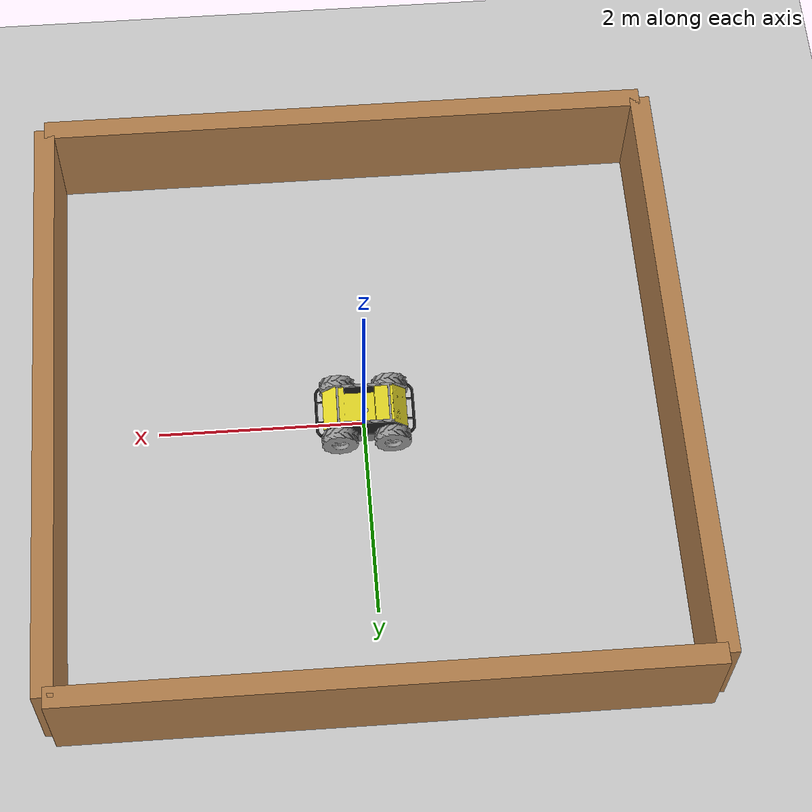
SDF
<sdf version="1.6">
 <world name="default">
  <model name="ground_plane">
   <static>1</static>
   <link name="link">
    <collision name="collision">
     <geometry><plane><normal>0 0 1</normal><size>100 100</size></plane></geometry>
     <surface><friction><ode><mu>100</mu><mu2>50</mu2></ode></friction></surface>
    </collision>
    <visual name="visual">
     <cast_shadows>0</cast_shadows>
     <geometry><plane><normal>0 0 1</normal><size>100 100</size></plane></geometry>
     <material>
      <script><uri>file://media/materials/scripts/gazebo.material</uri><name>Gazebo/Grey</name></script>
     </material>
    </visual>
   </link>
  </model>
  <physics name="default_physics" default="0" type="ode">
   <real_time_update_rate>1000</real_time_update_rate>
   <max_step_size>0.001</max_step_size>
   <real_time_factor>1</real_time_factor>
   <ode>
    <solver>
     <type>quick</type>
     <iters>150</iters>
     <precon_iters>0</precon_iters>
     <sor>1.4</sor>
     <use_dynamic_moi_rescaling>1</use_dynamic_moi_rescaling>
    </solver>
    <constraints>
     <cfm>1e-05</cfm>
     <erp>0.2</erp>
     <contact_max_correcting_vel>2000</contact_max_correcting_vel>
     <contact_surface_layer>0.01</contact_surface_layer>
    </constraints>
   </ode>
  </physics>
  <model name="neng_square">
   <link name="Wall_0">
    <collision name="Wall_0_Collision">
     <geometry><box><size>6 0.2 1</size></box></geometry>
     <pose>0 0 0.5 0 -0 0</pose>
    </collision>
    <visual name="Wall_0_Visual">
     <pose>0 0 0.5 0 -0 0</pose>
     <geometry><box><size>6 0.2 1</size></box></geometry>
     <material>
      <script><uri>file://media/materials/scripts/gazebo.material</uri><name>Gazebo/Wood</name></script>
      <ambient>1 1 1 1</ambient>
     </material>
    </visual>
    <pose>0 3 0 0 -0 0</pose>
   </link>
   <link name="Wall_2">
    <collision name="Wall_2_Collision">
     <geometry><box><size>6 0.2 1</size></box></geometry>
     <pose>0 0 0.5 0 -0 0</pose>
    </collision>
    <visual name="Wall_2_Visual">
     <pose>0 0 0.5 0 -0 0</pose>
     <geometry><box><size>6 0.2 1</size></box></geometry>
     <material>
      <script><uri>file://media/materials/scripts/gazebo.material</uri><name>Gazebo/Wood</name></script>
      <ambient>1 1 1 1</ambient>
     </material>
    </visual>
    <pose>-3 0 0 0 0 -1.5708</pose>
   </link>
   <link name="Wall_3">
    <collision name="Wall_3_Collision">
     <geometry><box><size>6 0.2 1</size></box></geometry>
     <pose>0 0 0.5 0 -0 0</pose>
    </collision>
    <visual name="Wall_3_Visual">
     <pose>0 0 0.5 0 -0 0</pose>
     <geometry><box><size>6 0.2 1</size></box></geometry>
     <material>
      <script><uri>file://media/materials/scripts/gazebo.material</uri><name>Gazebo/Wood</name></script>
      <ambient>1 1 1 1</ambient>
     </material>
    </visual>
    <pose>0 -3 0 0 -0 0</pose>
   </link>
   <link name="Wall_4">
    <collision name="Wall_4_Collision">
     <geometry><box><size>6 0.2 1</size></box></geometry>
     <pose>0 0 0.5 0 -0 0</pose>
    </collision>
    <visual name="Wall_4_Visual">
     <pose>0 0 0.5 0 -0 0</pose>
     <geometry><box><size>6 0.2 1</size></box></geometry>
     <material>
      <script><uri>file://media/materials/scripts/gazebo.material</uri><name>Gazebo/Wood</name></script>
      <ambient>1 1 1 1</ambient>
     </material>
    </visual>
    <pose>3 0 0 0 -0 1.5708</pose>
   </link>
   <static>1</static>
  </model>
  <scene><ambient>0.4 0.4 0.4 1</ambient><background>0.7 0.7 0.7 1</background><shadows>1</shadows></scene>
  <gravity>0 0 -9.8</gravity>
  <magnetic_field>6e-06 2.3e-05 -4.2e-05</magnetic_field>
  <atmosphere type="adiabatic"/>
  <spherical_coordinates>
   <surface_model>EARTH_WGS84</surface_model>
   <latitude_deg>0</latitude_deg>
   <longitude_deg>0</longitude_deg>
   <elevation>0</elevation>
   <heading_deg>0</heading_deg>
  </spherical_coordinates>
  <light name="user_spot_light_0" type="spot">
   <pose>3.05191 2.82041 1 0 -0 0</pose>
   <diffuse>0.5 0.5 0.5 1</diffuse>
   <specular>0.1 0.1 0.1 1</specular>
   <direction>0 0 -1</direction>
   <attenuation>
    <range>20</range>
    <constant>0.5</constant>
    <linear>0.01</linear>
    <quadratic>0.001</quadratic>
   </attenuation>
   <cast_shadows>0</cast_shadows>
   <spot><inner_angle>0.6</inner_angle><outer_angle>1</outer_angle><falloff>1</falloff></spot>
  </light>
  <light name="user_spot_light_1" type="spot">
   <pose>-2.83838 -2.91789 1 0 -0 0</pose>
   <diffuse>0.5 0.5 0.5 1</diffuse>
   <specular>0.1 0.1 0.1 1</specular>
   <direction>0 0 -1</direction>
   <attenuation>
    <range>20</range>
    <constant>0.5</constant>
    <linear>0.01</linear>
    <quadratic>0.001</quadratic>
   </attenuation>
   <cast_shadows>0</cast_shadows>
   <spot><inner_angle>0.6</inner_angle><outer_angle>1</outer_angle><falloff>1</falloff></spot>
  </light>
  <light name="user_spot_light_2" type="spot">
   <pose>3.06733 -3.06317 1 0 -0 0</pose>
   <diffuse>0.5 0.5 0.5 1</diffuse>
   <specular>0.1 0.1 0.1 1</specular>
   <direction>0 0 -1</direction>
   <attenuation>
    <range>20</range>
    <constant>0.5</constant>
    <linear>0.01</linear>
    <quadratic>0.001</quadratic>
   </attenuation>
   <cast_shadows>0</cast_shadows>
   <spot><inner_angle>0.6</inner_angle><outer_angle>1</outer_angle><falloff>1</falloff></spot>
  </light>
  <light name="user_spot_light_3" type="spot">
   <pose>-2.31827 3.06863 1 0 -0 0</pose>
   <diffuse>0.5 0.5 0.5 1</diffuse>
   <specular>0.1 0.1 0.1 1</specular>
   <direction>0 0 -1</direction>
   <attenuation>
    <range>20</range>
    <constant>0.5</constant>
    <linear>0.01</linear>
    <quadratic>0.001</quadratic>
   </attenuation>
   <cast_shadows>0</cast_shadows>
   <spot><inner_angle>0.6</inner_angle><outer_angle>1</outer_angle><falloff>1</falloff></spot>
  </light>
  <model name="husky">
   <pose>-0.011318 0.000137 0.175957 5e-06 -0.000533 -0.010401</pose>
   <link name="base_link">
    <collision name="collision">
     <pose>0 0 0.1 0 -0 0</pose>
     <geometry><box><size>1.0074 0.5709 0.2675</size></box></geometry>
    </collision>
    <inertial>
     <mass>33.855</mass>
     <pose>-0.085613 -0.00084 0.238145 0 -0 0</pose>
     <inertia>
      <ixx>2.2343</ixx>
      <ixy>-0.023642</ixy>
      <ixz>0.275174</ixz>
      <iyy>3.42518</iyy>
      <iyz>0.00239624</iyz>
      <izz>2.1241</izz>
     </inertia>
    </inertial>
    <visual name="base">
     <geometry><mesh><uri>model://husky/meshes/base_link.stl</uri><scale>1 1 1</scale></mesh></geometry>
     <material><script><name>Gazebo/FlatBlack</name><uri>__default__</uri></script></material>
    </visual>
    <visual name="top_plate">
     <geometry><mesh><uri>model://husky/meshes/top_plate.stl</uri><scale>1 1 1</scale></mesh></geometry>
     <material><script><name>Gazebo/Yellow</name><uri>__default__</uri></script></material>
    </visual>
    <visual name="front_bumper">
     <pose>0.47 0 0.091 0 -0 0</pose>
     <geometry><mesh><uri>model://husky/meshes/bumper.stl</uri><scale>1 1 1</scale></mesh></geometry>
     <material><script><name>Gazebo/FlatBlack</name><uri>__default__</uri></script></material>
    </visual>
    <visual name="rear_bumper">
     <pose>-0.47 0 0.091 0 -0 3.141</pose>
     <geometry><mesh><uri>model://husky/meshes/bumper.stl</uri><scale>1 1 1</scale></mesh></geometry>
     <material><script><name>Gazebo/FlatBlack</name><uri>__default__</uri></script></material>
    </visual>
    <visual name="user_rail">
     <pose>0.272 0 0.245 0 -0 0</pose>
     <geometry><mesh><uri>model://husky/meshes/user_rail.stl</uri><scale>1 1 1</scale></mesh></geometry>
     <material><script><name>Gazebo/Grey</name><uri>__default__</uri></script></material>
    </visual>
   </link>
   <link name="back_left_wheel">
    <pose>-0.256 0.285475 0.035 0 -0 0</pose>
    <inertial>
     <mass>2.6357</mass>
     <inertia>
      <ixx>0.0246688</ixx>
      <ixy>0</ixy>
      <ixz>0</ixz>
      <iyy>0.0246688</iyy>
      <iyz>0</iyz>
      <izz>0.0441058</izz>
     </inertia>
    </inertial>
    <collision name="back_left_wheel_collision">
     <pose>0 0 0 -1.5707 0 0</pose>
     <geometry><cylinder><radius>0.17775</radius><length>0.1143</length></cylinder></geometry>
     <surface>
      <friction><ode><mu>100000</mu><mu2>100000</mu2><slip1>0</slip1><slip2>0</slip2></ode></friction>
     </surface>
    </collision>
    <visual name="back_left_wheel">
     <pose>0 0 0 -3.14159 0 0</pose>
     <geometry><mesh><uri>model://husky/meshes/wheel.stl</uri><scale>1 1 1</scale></mesh></geometry>
     <material><script><name>Gazebo/Grey</name><uri>__default__</uri></script></material>
    </visual>
   </link>
   <joint name="back_left_joint" type="revolute">
    <parent>base_link</parent>
    <child>back_left_wheel</child>
    <axis>
     <xyz>0 1 0</xyz>
     <use_parent_model_frame>1</use_parent_model_frame>
     <limit><lower>-1e+16</lower><upper>1e+16</upper></limit>
     <dynamics><spring_reference>0</spring_reference><spring_stiffness>0</spring_stiffness></dynamics>
    </axis>
    <physics><ode><limit><cfm>0</cfm><erp>0.9</erp></limit></ode></physics>
   </joint>
   <link name="back_right_wheel">
    <pose>-0.256 -0.285475 0.035 0 -0 0</pose>
    <inertial>
     <mass>2.6357</mass>
     <inertia>
      <ixx>0.0246688</ixx>
      <ixy>0</ixy>
      <ixz>0</ixz>
      <iyy>0.0246688</iyy>
      <iyz>0</iyz>
      <izz>0.0441058</izz>
     </inertia>
    </inertial>
    <collision name="back_right_wheel_collision">
     <pose>0 0 0 -1.5707 0 0</pose>
     <geometry><cylinder><radius>0.17775</radius><length>0.1143</length></cylinder></geometry>
     <surface>
      <friction><ode><mu>100000</mu><mu2>100000</mu2><slip1>0</slip1><slip2>0</slip2></ode></friction>
     </surface>
    </collision>
    <visual name="back_right_wheel">
     <pose>0 0 0 -3.14159 0 0</pose>
     <geometry><mesh><uri>model://husky/meshes/wheel.stl</uri><scale>1 1 1</scale></mesh></geometry>
     <material><script><name>Gazebo/Grey</name><uri>__default__</uri></script></material>
    </visual>
   </link>
   <joint name="back_right_joint" type="revolute">
    <parent>base_link</parent>
    <child>back_right_wheel</child>
    <axis>
     <xyz>0 1 0</xyz>
     <use_parent_model_frame>1</use_parent_model_frame>
     <limit><lower>-1e+16</lower><upper>1e+16</upper></limit>
     <dynamics><spring_reference>0</spring_reference><spring_stiffness>0</spring_stiffness></dynamics>
    </axis>
    <physics><ode><limit><cfm>0</cfm><erp>0.9</erp></limit></ode></physics>
   </joint>
   <link name="front_left_wheel">
    <pose>0.256 0.285475 0.035 0 -0 0</pose>
    <inertial>
     <mass>2.6357</mass>
     <inertia>
      <ixx>0.0246688</ixx>
      <ixy>0</ixy>
      <ixz>0</ixz>
      <iyy>0.0246688</iyy>
      <iyz>0</iyz>
      <izz>0.0441058</izz>
     </inertia>
    </inertial>
    <collision name="front_left_wheel_collision">
     <pose>0 0 0 -1.5707 0 0</pose>
     <geometry><cylinder><radius>0.17775</radius><length>0.1143</length></cylinder></geometry>
     <surface>
      <friction><ode><mu>100000</mu><mu2>100000</mu2><slip1>0</slip1><slip2>0</slip2></ode></friction>
     </surface>
    </collision>
    <visual name="front_left_wheel">
     <pose>0 0 0 -3.14159 0 0</pose>
     <geometry><mesh><uri>model://husky/meshes/wheel.stl</uri><scale>1 1 1</scale></mesh></geometry>
     <material><script><name>Gazebo/Grey</name><uri>__default__</uri></script></material>
    </visual>
   </link>
   <joint name="front_left_joint" type="revolute">
    <parent>base_link</parent>
    <child>front_left_wheel</child>
    <axis>
     <xyz>0 1 0</xyz>
     <use_parent_model_frame>1</use_parent_model_frame>
     <limit><lower>-1e+16</lower><upper>1e+16</upper></limit>
     <dynamics><spring_reference>0</spring_reference><spring_stiffness>0</spring_stiffness></dynamics>
    </axis>
    <physics><ode><limit><cfm>0</cfm><erp>0.9</erp></limit></ode></physics>
   </joint>
   <link name="front_right_wheel">
    <pose>0.256 -0.285475 0.035 0 -0 0</pose>
    <inertial>
     <mass>2.6357</mass>
     <inertia>
      <ixx>0.0246688</ixx>
      <ixy>0</ixy>
      <ixz>0</ixz>
      <iyy>0.0246688</iyy>
      <iyz>0</iyz>
      <izz>0.0441058</izz>
     </inertia>
    </inertial>
    <collision name="front_right_wheel_collision">
     <pose>0 0 0 -1.5707 0 0</pose>
     <geometry><cylinder><radius>0.17775</radius><length>0.1143</length></cylinder></geometry>
     <surface>
      <friction><ode><mu>100000</mu><mu2>100000</mu2><slip1>0</slip1><slip2>0</slip2></ode></friction>
     </surface>
    </collision>
    <visual name="front_right_wheel">
     <pose>0 0 0 -3.14159 0 0</pose>
     <geometry><mesh><uri>model://husky/meshes/wheel.stl</uri><scale>1 1 1</scale></mesh></geometry>
     <material><script><name>Gazebo/Grey</name><uri>__default__</uri></script></material>
    </visual>
   </link>
   <joint name="front_right_joint" type="revolute">
    <parent>base_link</parent>
    <child>front_right_wheel</child>
    <axis>
     <xyz>0 1 0</xyz>
     <use_parent_model_frame>1</use_parent_model_frame>
     <limit><lower>-1e+16</lower><upper>1e+16</upper></limit>
     <dynamics><spring_reference>0</spring_reference><spring_stiffness>0</spring_stiffness></dynamics>
    </axis>
    <physics><ode><limit><cfm>0</cfm><erp>0.9</erp></limit></ode></physics>
   </joint>
   <plugin name="husky_diff_controller" filename="libhusky_gazebo_plugins.so">
    <alwaysOn>true</alwaysOn>
    <updateRate>100.0</updateRate>
    <backLeftJoint>back_left_joint</backLeftJoint>
    <backRightJoint>back_right_joint</backRightJoint>
    <frontLeftJoint>front_left_joint</frontLeftJoint>
    <frontRightJoint>front_right_joint</frontRightJoint>
    <wheelSeparation>0.5709</wheelSeparation>
    <wheelDiameter>0.3555</wheelDiameter>
    <torque>35</torque>
   </plugin>
  </model>
  <model name="cinder_block_wide">
   <link name="link">
    <inertial>
     <pose>0 0 0.071438 0 -0 0</pose>
     <mass>5</mass>
     <inertia>
      <ixx>0.0681466</ixx>
      <ixy>0</ixy>
      <iyy>0.0681466</iyy>
      <ixz>0</ixz>
      <iyz>0</iyz>
      <izz>0.124808</izz>
     </inertia>
    </inertial>
    <visual name="visual">
     <geometry>
      <mesh><uri>model://cinder_block_wide/meshes/cinder_block_wide.dae</uri><scale>1 1 1</scale></mesh>
     </geometry>
    </visual>
    <collision name="top">
     <pose>0 0 0.130175 0 -0 0</pose>
     <geometry><box><size>0.387354 0.387354 0.0254</size></box></geometry>
     <surface>
      <contact><ode><max_vel>0.1</max_vel><min_depth>0.001</min_depth></ode></contact>
      <friction><ode><mu>1</mu><mu2>1</mu2></ode></friction>
     </surface>
    </collision>
    <collision name="bottom">
     <pose>0 0 0.0127 0 -0 0</pose>
     <geometry><box><size>0.387354 0.387354 0.0254</size></box></geometry>
     <surface>
      <contact><ode><max_vel>0.1</max_vel><min_depth>0.001</min_depth></ode></contact>
      <friction><ode><mu>1</mu><mu2>1</mu2></ode></friction>
     </surface>
    </collision>
    <collision name="left">
     <pose>0 -0.183355 0.071438 0 -0 0</pose>
     <geometry><box><size>0.387354 0.020643 0.092075</size></box></geometry>
     <surface>
      <contact><ode><max_vel>0.1</max_vel><min_depth>0.001</min_depth></ode></contact>
      <friction><ode><mu>1</mu><mu2>1</mu2></ode></friction>
     </surface>
    </collision>
    <collision name="right">
     <pose>0 0.183355 0.071438 0 -0 0</pose>
     <geometry><box><size>0.387354 0.020643 0.092075</size></box></geometry>
     <surface>
      <contact><ode><max_vel>0.1</max_vel><min_depth>0.001</min_depth></ode></contact>
      <friction><ode><mu>1</mu><mu2>1</mu2></ode></friction>
     </surface>
    </collision>
    <collision name="middle">
     <pose>0 0 0.071438 0 -0 0</pose>
     <geometry><box><size>0.387354 0.0254 0.092075</size></box></geometry>
     <surface>
      <contact><ode><max_vel>0.1</max_vel><min_depth>0.001</min_depth></ode></contact>
      <friction><ode><mu>1</mu><mu2>1</mu2></ode></friction>
     </surface>
    </collision>
   </link>
   <pose>-0.004662 0.000875 -0.000655 3e-06 -0.000533 -0.006653</pose>
  </model>
  <model name="coke_can">
   <link name="link">
    <inertial>
     <mass>0.39</mass>
     <inertia><ixx>0.00058</ixx><ixy>0</ixy><ixz>0</ixz><iyy>0.00058</iyy><iyz>0</iyz><izz>0.00019</izz></inertia>
    </inertial>
    <collision name="collision">
     <pose>0 0 -0.46 0 -0 0</pose>
     <geometry><mesh><uri>model://coke_can/meshes/coke_can.dae</uri><scale>1 1 1</scale></mesh></geometry>
    </collision>
    <visual name="visual">
     <pose>0 0 -0.46 0 -0 0</pose>
     <geometry><mesh><uri>model://coke_can/meshes/coke_can.dae</uri><scale>1 1 1</scale></mesh></geometry>
    </visual>
   </link>
   <pose>-0.011257 0.003298 0.40557 -0.04221 0.014627 -0.002829</pose>
  </model>
 </world>
</sdf>
